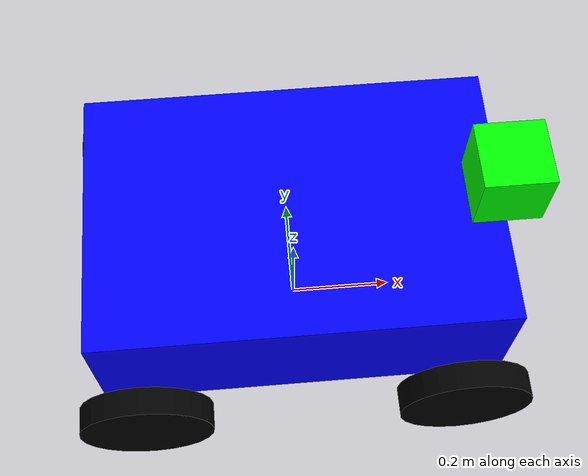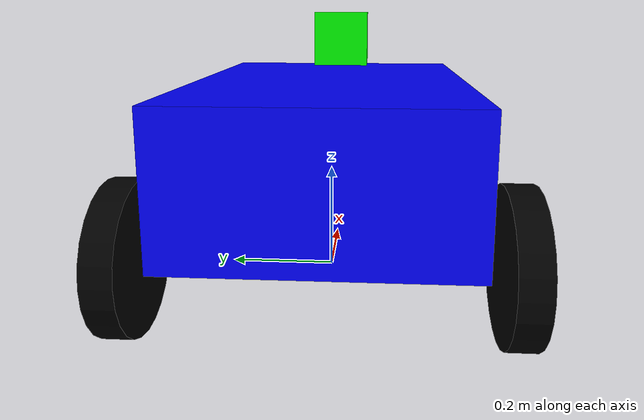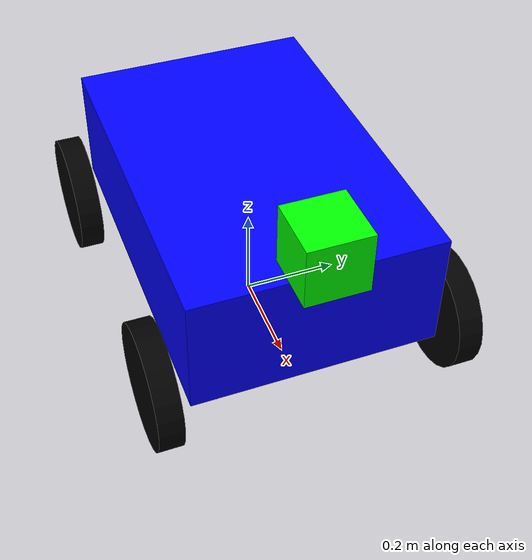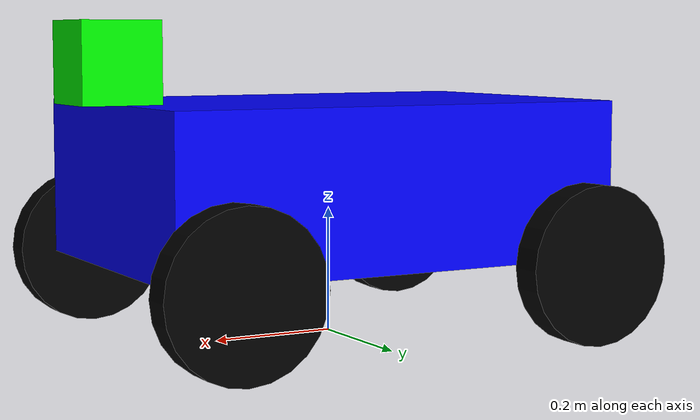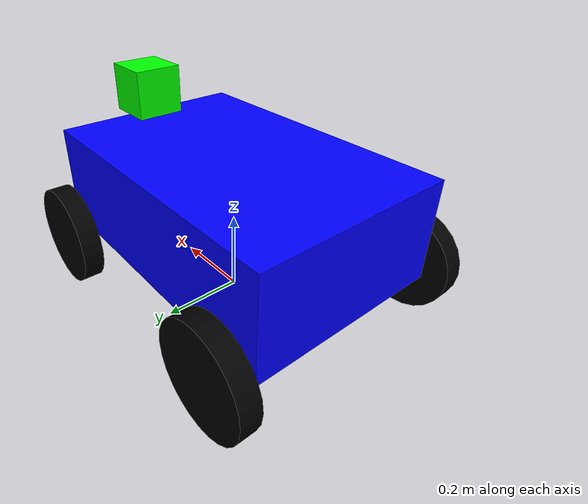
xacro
<?xml version="1.0"?>
<robot xmlns:xacro="http://www.ros.org/wiki/xacro" name="apriltag_torso_bot">

  <xacro:arg name="config_file" default=""/>

  <!-- Materials -->
  <material name="black"><color rgba="0 0 0 1"/></material>
  <material name="blue"><color rgba="0 0 1 1"/></material>
  <material name="green"><color rgba="0 1 0 1"/></material>

  <!-- Base Properties -->
  <xacro:property name="base_length" value="0.75"/>
  <xacro:property name="base_width"  value="0.5"/>
  <xacro:property name="base_height" value="0.25"/>
  <xacro:property name="base_mass"   value="31.25"/>

  <!-- Wheel Properties -->
  <xacro:property name="wheel_radius" value="0.125"/>
  <xacro:property name="wheel_width"  value="0.05"/>
  <xacro:property name="wheel_mass"   value="3.1"/>

  <!-- Geometry -->
  <xacro:property name="wheelbase" value="0.6"/>
  <xacro:property name="track"     value="0.6"/>
  <xacro:property name="cam_size" value="0.125"/>

  <!-- Inertia Macros -->
  <xacro:macro name="box_inertia" params="m x y z">
    <inertial>
      <mass value="${m}"/>
      <inertia ixx="${m*(y*y+z*z)/12}" ixy="0" ixz="0"
               iyy="${m*(x*x+z*z)/12}" iyz="0"
               izz="${m*(x*x+y*y)/12}"/>
    </inertial>
  </xacro:macro>

  <xacro:macro name="cylinder_inertia" params="m r h">
    <inertial>
      <mass value="${m}"/>
      <inertia ixx="${m*(3*r*r+h*h)/12}" ixy="0" ixz="0"
               iyy="${m*(3*r*r+h*h)/12}" iyz="0"
               izz="${m*r*r/2}"/>
    </inertial>
  </xacro:macro>

  <link name="base_footprint"/>
  <joint name="base_joint" type="fixed">
    <parent link="base_footprint"/>
    <child link="base_link"/>
    <origin xyz="0 0 ${wheel_radius + base_height/2}" rpy="0 0 0"/>
  </joint>

  <!-- Base Link -->
  <link name="base_link">
    <xacro:box_inertia m="${base_mass}" x="${base_length}" y="${base_width}" z="${base_height}"/>
    <visual>
      <geometry><box size="${base_length} ${base_width} ${base_height}"/></geometry>
      <material name="blue"/>
    </visual>
    <collision>
      <geometry><box size="${base_length} ${base_width} ${base_height}"/></geometry>
    </collision>
  </link>

  <!-- Rear Wheels (Driven) -->
  <xacro:macro name="rear_wheel" params="prefix y_offset">
    <link name="${prefix}_wheel_link">
      <xacro:cylinder_inertia m="${wheel_mass}" r="${wheel_radius}" h="${wheel_width}"/>
      <visual>
        <geometry><cylinder radius="${wheel_radius}" length="${wheel_width}"/></geometry>
        <material name="black"/>
      </visual>
      <collision>
        <geometry><cylinder radius="${wheel_radius}" length="${wheel_width}"/></geometry>
      </collision>
    </link>
    <joint name="${prefix}_wheel_joint" type="continuous">
      <parent link="base_link"/>
      <child link="${prefix}_wheel_link"/>
      <origin xyz="${-wheelbase/2} ${y_offset} ${-base_height/2}" rpy="${-pi/2} 0 0"/>
      <axis xyz="0 0 1"/>
      <dynamics damping="0.1" friction="0.1"/>
    </joint>
  </xacro:macro>

  <xacro:rear_wheel prefix="rear_left"  y_offset="${track/2}"/>
  <xacro:rear_wheel prefix="rear_right" y_offset="${-track/2}"/>

  <!-- Front Wheels (Steered + Driven Read-Only) -->
  <xacro:macro name="front_wheel" params="prefix y_offset">
    <!-- Steering Link -->
    <link name="${prefix}_steer_link">
      <inertial>
        <mass value="0.5"/>
        <inertia ixx="0.001" ixy="0" ixz="0" iyy="0.001" iyz="0" izz="0.001"/>
      </inertial>
    </link>
    <joint name="${prefix}_steer_joint" type="revolute">
      <parent link="base_link"/>
      <child link="${prefix}_steer_link"/>
      <origin xyz="${wheelbase/2} ${y_offset} ${-base_height/2}" rpy="0 0 0"/>
      <axis xyz="0 0 1"/>
      <limit lower="-0.6" upper="0.6" effort="50" velocity="1.0"/>
      <dynamics damping="0.5" friction="0.0"/>
    </joint>

    <!-- Wheel Link -->
    <link name="${prefix}_wheel_link">
      <xacro:cylinder_inertia m="${wheel_mass}" r="${wheel_radius}" h="${wheel_width}"/>
      <visual>
        <geometry><cylinder radius="${wheel_radius}" length="${wheel_width}"/></geometry>
        <material name="black"/>
      </visual>
      <collision>
        <geometry><cylinder radius="${wheel_radius}" length="${wheel_width}"/></geometry>
      </collision>
    </link>
    <joint name="${prefix}_wheel_joint" type="continuous">
      <parent link="${prefix}_steer_link"/>
      <child link="${prefix}_wheel_link"/>
      <origin xyz="0 0 0" rpy="${-pi/2} 0 0"/>
      <axis xyz="0 0 1"/>
      <dynamics damping="0.1" friction="0.1"/>
    </joint>
  </xacro:macro>

  <xacro:front_wheel prefix="front_left"  y_offset="${track/2}"/>
  <xacro:front_wheel prefix="front_right" y_offset="${-track/2}"/>

  <!-- Camera Link -->
  <link name="camera_link">
    <visual>
      <geometry><box size="${cam_size} ${cam_size} ${cam_size}"/></geometry>
      <material name="green"/>
    </visual>
  </link>
  <joint name="camera_joint" type="fixed">
    <parent link="base_link"/>
    <child link="camera_link"/>
    <origin xyz="${base_length/2} 0 ${base_height/2 + cam_size/2}"/>
  </joint>
  <link name="camera_optical_frame"/>
  <joint name="camera_optical_joint" type="fixed">
    <parent link="camera_link"/>
    <child link="camera_optical_frame"/>
    <origin xyz="0 0 0" rpy="${-pi/2} 0 ${-pi/2}"/>
  </joint>

  <!-- IMU Link -->
  <link name="imu_link"/>
  <joint name="imu_joint" type="fixed">
    <parent link="base_link"/>
    <child link="imu_link"/>
    <origin xyz="0 0 0"/>
  </joint>

  <!-- ROS2 Control Configuration -->
  <ros2_control name="AckermannSystem" type="system">
    <hardware>
      <plugin>gazebo_ros2_control/GazeboSystem</plugin>
    </hardware>

    <!-- STEERING JOINTS (Position Command) -->
    <joint name="front_left_steer_joint">
      <command_interface name="position"/>
      <state_interface name="position"/>
      <state_interface name="velocity"/>
    </joint>
    <joint name="front_right_steer_joint">
      <command_interface name="position"/>
      <state_interface name="position"/>
      <state_interface name="velocity"/>
    </joint>

    <!-- REAR WHEELS - DRIVEN (Effort/Torque Command) -->
    <!-- These are the main drive motors - command effort for smooth physics -->
    <joint name="rear_left_wheel_joint">
      <command_interface name="effort"/>
      <state_interface name="position"/>
      <state_interface name="velocity"/>
    </joint>
    <joint name="rear_right_wheel_joint">
      <command_interface name="effort"/>
      <state_interface name="position"/>
      <state_interface name="velocity"/>
    </joint>

    <!-- FRONT WHEELS - Read-Only (passive, driven by steering) -->
    <joint name="front_left_wheel_joint">
      <state_interface name="position"/>
      <state_interface name="velocity"/>
    </joint>
    <joint name="front_right_wheel_joint">
      <state_interface name="position"/>
      <state_interface name="velocity"/>
    </joint>

    <!-- IMU Sensor Interface -->
    <sensor name="imu_sensor">
      <state_interface name="orientation.x"/>
      <state_interface name="orientation.y"/>
      <state_interface name="orientation.z"/>
      <state_interface name="orientation.w"/>
      <state_interface name="angular_velocity.x"/>
      <state_interface name="angular_velocity.y"/>
      <state_interface name="angular_velocity.z"/>
      <state_interface name="linear_acceleration.x"/>
      <state_interface name="linear_acceleration.y"/>
      <state_interface name="linear_acceleration.z"/>
    </sensor>
  </ros2_control>

  <!-- Gazebo Plugin -->
  <gazebo>
    <plugin name="gazebo_ros2_control" filename="libgazebo_ros2_control.so">
      <parameters>$(arg config_file)</parameters>
    </plugin>
  </gazebo>

  <gazebo>
    <plugin name="gazebo_ros_p3d" filename="libgazebo_ros_p3d.so">
      <ros>
        <!-- Ensure the topic name matches your RViz settings -->
        <remapping>odom:=/apriltag_slam/ground_truth/odom</remapping>
      </ros>
      <frame_name>world</frame_name>
      <body_name>imu_link</body_name>
      <update_rate>50.0</update_rate>
      <gaussian_noise>0.01</gaussian_noise>
      <xyz_offset>0 0 0</xyz_offset>
      <rpy_offset>0 0 0</rpy_offset>
      <!-- Sole broadcaster for world -> base_footprint -->
      <publish_odom_tf>true</publish_odom_tf>
    </plugin>
  </gazebo>

  <!-- Camera Sensor -->
  <gazebo reference="camera_link">
    <sensor name="/apriltag_slam/camera" type="camera">
      <always_on>true</always_on>
      <update_rate>30.0</update_rate>
      <camera>
        <horizontal_fov>1.396</horizontal_fov>
        <image>
          <width>640</width>
          <height>480</height>
          <format>R8G8B8</format>
        </image>
        <clip>
          <near>0.02</near>
          <far>50.0</far>
        </clip>
      </camera>
      <plugin name="camera_controller" filename="libgazebo_ros_camera.so">
        <frame_name>camera_optical_frame</frame_name>
      </plugin>
    </sensor>
  </gazebo>

  <!-- IMU Sensor -->
  <gazebo reference="imu_link">
    <sensor name="imu_sensor" type="imu">
      <plugin filename="libgazebo_ros_imu_sensor.so" name="imu_plugin">
        <ros>
          <namespace>/apriltag_slam/imu</namespace>
          <remapping>~/out:=data_raw</remapping>
        </ros>
        <initial_orientation_as_reference>false</initial_orientation_as_reference>
      </plugin>
      <always_on>true</always_on>
      <update_rate>100</update_rate>
      <imu>
        <angular_velocity>
          <x><noise type="gaussian"><mean>0</mean><stddev>0.001</stddev></noise></x>
          <y><noise type="gaussian"><mean>0</mean><stddev>0.001</stddev></noise></y>
          <z><noise type="gaussian"><mean>0</mean><stddev>0.001</stddev></noise></z>
        </angular_velocity>
        <linear_acceleration>
          <x><noise type="gaussian"><mean>0</mean><stddev>0.005</stddev></noise></x>
          <y><noise type="gaussian"><mean>0</mean><stddev>0.005</stddev></noise></y>
          <z><noise type="gaussian"><mean>0</mean><stddev>0.005</stddev></noise></z>
        </linear_acceleration>
      </imu>
    </sensor>
  </gazebo>

</robot>
